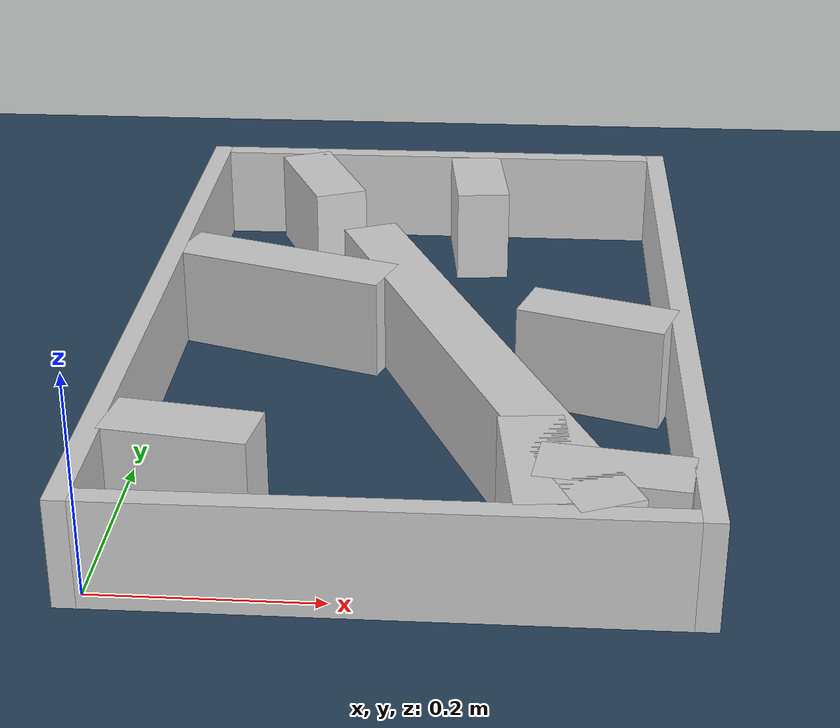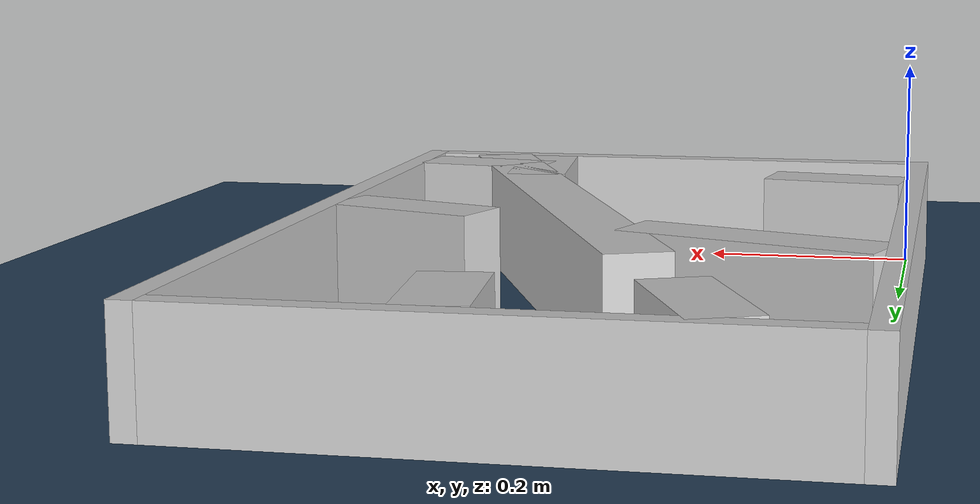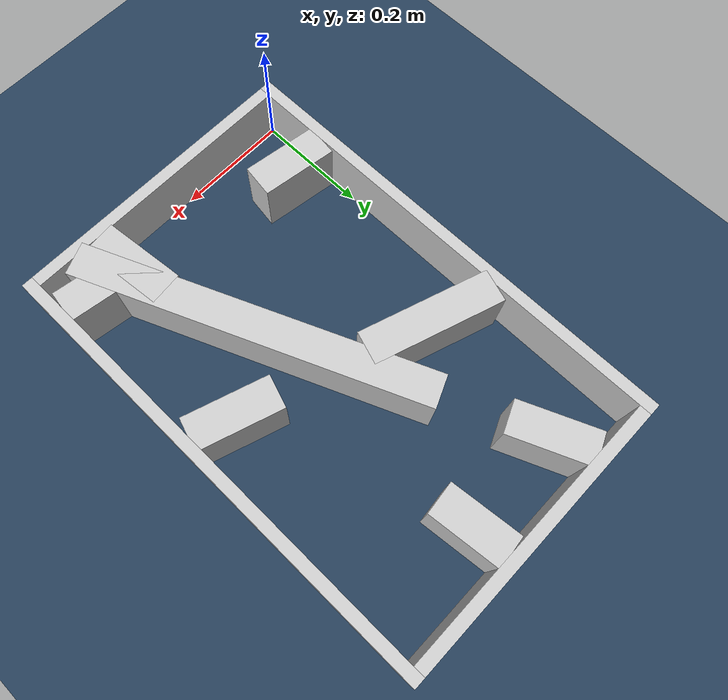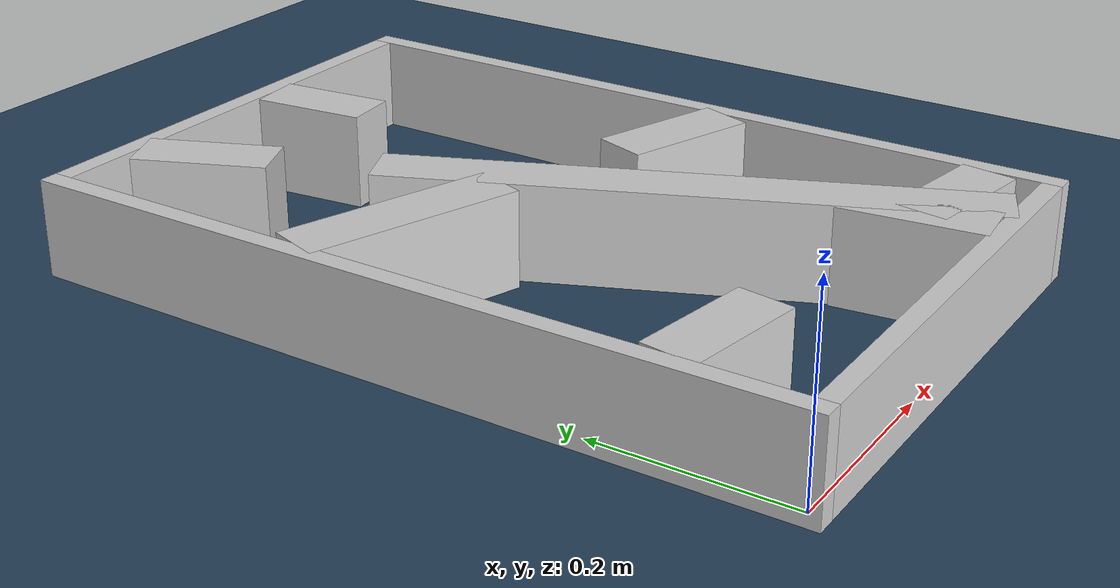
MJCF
<?xml version="1.0" ?>
<mujoco model="generated_real_template">
  <compiler angle="degree"/>
  <option timestep="0.002" integrator="implicitfast" iterations="100" cone="elliptic"/>
  <default>
    <geom density="1"/>
  </default>
  <asset>
    <texture builtin="gradient" height="3072" rgb1="0.3 0.5 0.7" rgb2="0 0 0" type="skybox" width="512"/>
    <texture builtin="checker" height="300" mark="edge" markrgb="0.8 0.8 0.8" name="groundplane" rgb1="0.2 0.3 0.4" rgb2="0.1 0.2 0.3" type="2d" width="300"/>
    <material name="groundplane" reflectance="0.2" texrepeat="5 5" texture="groundplane" texuniform="true"/>
  </asset>
  <worldbody>
    <light dir="0 0 -1" directional="true" pos="0 0 1.5"/>
    <geom name="floor" type="plane" condim="4" friction="0.5 0.005 0.001" material="groundplane" size="0 0 0.05"/>
    <body name="walls">
      <geom name="wall_boundary_left" type="box" condim="4" friction="1.0 0.005 0.0001" rgba="0.8 0.8 0.8 1" pos="-0.010000 0.387500 0.050000" euler="0 0 0.000000" size="0.010000 0.407500 0.050000"/>
      <geom name="wall_boundary_right" type="box" condim="4" friction="1.0 0.005 0.0001" rgba="0.8 0.8 0.8 1" pos="0.500000 0.387500 0.050000" euler="0 0 0.000000" size="0.010000 0.407500 0.050000"/>
      <geom name="wall_boundary_bottom" type="box" condim="4" friction="1.0 0.005 0.0001" rgba="0.8 0.8 0.8 1" pos="0.245000 -0.010000 0.050000" euler="0 0 0.000000" size="0.245000 0.010000 0.050000"/>
      <geom name="wall_boundary_top" type="box" condim="4" friction="1.0 0.005 0.0001" rgba="0.8 0.8 0.8 1" pos="0.245000 0.785000 0.050000" euler="0 0 0.000000" size="0.245000 0.010000 0.050000"/>
      <geom name="wall_inner_1_1" type="box" condim="4" friction="1.0 0.005 0.0001" rgba="0.8 0.8 0.8 1" pos="0.365998 0.071212 0.050000" euler="0 0 96.134581" size="0.071622 0.028500 0.050000"/>
      <geom name="wall_inner_1_2" type="box" condim="4" friction="1.0 0.005 0.0001" rgba="0.8 0.8 0.8 1" pos="0.296856 0.714508 0.050000" euler="0 0 96.134581" size="0.060841 0.028500 0.050000"/>
      <geom name="wall_inner_2_1" type="box" condim="4" friction="1.0 0.005 0.0001" rgba="0.8 0.8 0.8 1" pos="0.107067 0.464841 0.050000" euler="0 0 -18.665919" size="0.113011 0.028500 0.050000"/>
      <geom name="wall_inner_2_2" type="box" condim="4" friction="1.0 0.005 0.0001" rgba="0.8 0.8 0.8 1" pos="0.421259 0.358701 0.050000" euler="0 0 -18.665919" size="0.072558 0.028500 0.050000"/>
      <geom name="wall_inner_3_1" type="box" condim="4" friction="1.0 0.005 0.0001" rgba="0.8 0.8 0.8 1" pos="0.304766 0.277469 0.050000" euler="0 0 113.267007" size="0.302032 0.028500 0.050000"/>
      <geom name="wall_inner_3_2" type="box" condim="4" friction="1.0 0.005 0.0001" rgba="0.8 0.8 0.8 1" pos="0.118069 0.711661 0.050000" euler="0 0 113.267007" size="0.068946 0.028500 0.050000"/>
      <geom name="wall_inner_4_1" type="box" condim="4" friction="1.0 0.005 0.0001" rgba="0.8 0.8 0.8 1" pos="0.064776 0.115361 0.050000" euler="0 0 -8.539772" size="0.065502 0.028500 0.050000"/>
      <geom name="wall_inner_4_2" type="box" condim="4" friction="1.0 0.005 0.0001" rgba="0.8 0.8 0.8 1" pos="0.426633 0.061025 0.050000" euler="0 0 -8.539772" size="0.064077 0.028500 0.050000"/>
    </body>
  </worldbody>
</mujoco>
